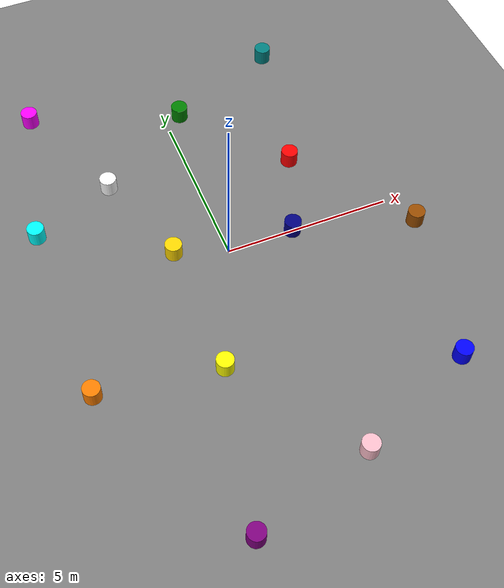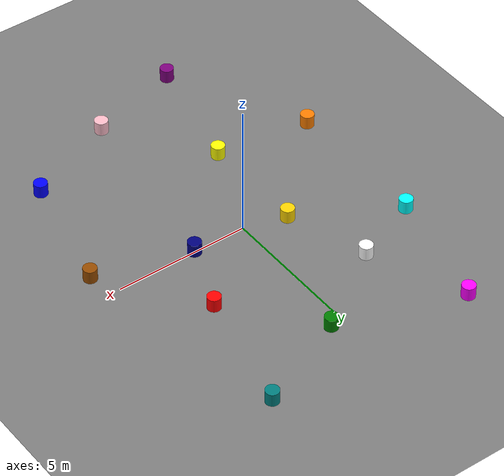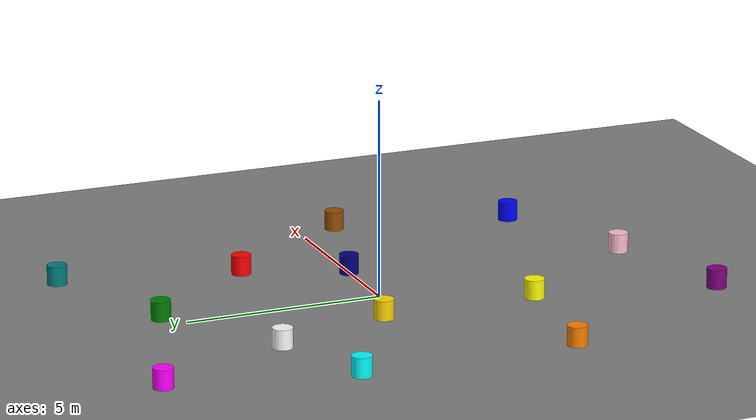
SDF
<sdf version="1.9">
 <world name="empty">
  <physics name="1ms" type="ignored">
   <max_step_size>0.001</max_step_size>
   <real_time_factor>1</real_time_factor>
   <real_time_update_rate>1000</real_time_update_rate>
  </physics>
  <plugin name="gz::sim::systems::Physics" filename="ignition-gazebo-physics-system"/>
  <plugin name="gz::sim::systems::UserCommands" filename="ignition-gazebo-user-commands-system"/>
  <plugin name="gz::sim::systems::SceneBroadcaster" filename="ignition-gazebo-scene-broadcaster-system"/>
  <plugin name="gz::sim::systems::Contact" filename="ignition-gazebo-contact-system"/>
  <plugin filename="ignition-gazebo-imu-system" name="ignition::gazebo::systems::Imu"/>
  <plugin filename="ignition-gazebo-sensors-system" name="ignition::gazebo::systems::Sensors">
   <render_engine>ogre2</render_engine>
  </plugin>
  <gravity>0 0 -9.8</gravity>
  <magnetic_field>6e-06 2.3e-05 -4.2e-05</magnetic_field>
  <atmosphere type="adiabatic"/>
  <scene><ambient>0.4 0.4 0.4 1</ambient><background>0.7 0.7 0.7 1</background><shadows>true</shadows></scene>
  <model name="ground_plane">
   <static>true</static>
   <link name="link">
    <collision name="collision">
     <geometry><plane><normal>0 0 1</normal><size>100 100</size></plane></geometry>
    </collision>
    <visual name="visual">
     <geometry><plane><normal>0 0 1</normal><size>100 100</size></plane></geometry>
     <material>
      <ambient>0.5 0.5 0.5 1.0</ambient>
      <diffuse>0.5 0.5 0.5 1.0</diffuse>
      <specular>0.1 0.1 0.1 1.0</specular>
     </material>
    </visual>
    <inertial>
     <mass>1</mass>
     <inertia><ixx>1</ixx><ixy>0</ixy><ixz>0</ixz><iyy>1</iyy><iyz>0</iyz><izz>1</izz></inertia>
    </inertial>
   </link>
  </model>
  <model name="cylinder">
   <pose>3.0 2.5 0.25 0 -0 0</pose>
   <link name="cylinder_link">
    <inertial>
     <inertia>
      <ixx>0.14580000000000001</ixx>
      <ixy>0</ixy>
      <ixz>0</ixz>
      <iyy>0.14580000000000001</iyy>
      <iyz>0</iyz>
      <izz>0.125</izz>
     </inertia>
     <mass>1000</mass>
    </inertial>
    <collision name="cylinder_collision">
     <geometry><cylinder><radius>0.25</radius><length>0.5</length></cylinder></geometry>
    </collision>
    <visual name="cylinder_visual">
     <geometry><cylinder><radius>0.25</radius><length>0.5</length></cylinder></geometry>
     <material>
      <ambient>1.0 0.0 0.0 1.0</ambient>
      <diffuse>1.0 0.0 0.0 1.0</diffuse>
      <specular>0.1 0.1 0.1 1.0</specular>
     </material>
    </visual>
   </link>
   <static>false</static>
  </model>
  <model name="cylinder_0">
   <pose>4.5 -5.5 0.25 0 -0 0</pose>
   <link name="cylinder_link">
    <inertial>
     <inertia>
      <ixx>0.14580000000000001</ixx>
      <ixy>0</ixy>
      <ixz>0</ixz>
      <iyy>0.14580000000000001</iyy>
      <iyz>0</iyz>
      <izz>0.125</izz>
     </inertia>
     <mass>1000</mass>
    </inertial>
    <collision name="cylinder_collision">
     <geometry><cylinder><radius>0.25</radius><length>0.5</length></cylinder></geometry>
    </collision>
    <visual name="cylinder_visual">
     <geometry><cylinder><radius>0.25</radius><length>0.5</length></cylinder></geometry>
     <material>
      <ambient>0.0 0.0 1.0 1.0</ambient>
      <diffuse>0.0 0.0 1.0 1.0</diffuse>
      <specular>0.1 0.1 0.1 1.0</specular>
     </material>
    </visual>
   </link>
   <static>false</static>
  </model>
  <model name="cylinder_1">
   <pose>-1.5 -3.5 0.25 0 -0 0</pose>
   <link name="cylinder_link">
    <inertial>
     <inertia>
      <ixx>0.14580000000000001</ixx>
      <ixy>0</ixy>
      <ixz>0</ixz>
      <iyy>0.14580000000000001</iyy>
      <iyz>0</iyz>
      <izz>0.125</izz>
     </inertia>
     <mass>1000</mass>
    </inertial>
    <collision name="cylinder_collision">
     <geometry><cylinder><radius>0.25</radius><length>0.5</length></cylinder></geometry>
    </collision>
    <visual name="cylinder_visual">
     <geometry><cylinder><radius>0.25</radius><length>0.5</length></cylinder></geometry>
     <material>
      <ambient>1.0 1.0 0.0 1.0</ambient>
      <diffuse>1.0 1.0 0.0 1.0</diffuse>
      <specular>0.1 0.1 0.1 1.0</specular>
     </material>
    </visual>
   </link>
   <static>false</static>
  </model>
  <model name="cylinder_2">
   <pose>-2.5 3.5 0.25 0 -0 0</pose>
   <link name="cylinder_link">
    <inertial>
     <inertia>
      <ixx>0.14580000000000001</ixx>
      <ixy>0</ixy>
      <ixz>0</ixz>
      <iyy>0.14580000000000001</iyy>
      <iyz>0</iyz>
      <izz>0.125</izz>
     </inertia>
     <mass>1000</mass>
    </inertial>
    <collision name="cylinder_collision">
     <geometry><cylinder><radius>0.25</radius><length>0.5</length></cylinder></geometry>
    </collision>
    <visual name="cylinder_visual">
     <geometry><cylinder><radius>0.25</radius><length>0.5</length></cylinder></geometry>
     <material>
      <ambient>1.0 1.0 1.0 1.0</ambient>
      <diffuse>1.0 1.0 1.0 1.0</diffuse>
      <specular>0.1 0.1 0.1 1.0</specular>
     </material>
    </visual>
   </link>
   <static>false</static>
  </model>
  <model name="cylinder_3">
   <pose>-1.5 0.5 0.25 0 -0 0</pose>
   <link name="cylinder_link">
    <inertial>
     <inertia>
      <ixx>0.14580000000000001</ixx>
      <ixy>0</ixy>
      <ixz>0</ixz>
      <iyy>0.14580000000000001</iyy>
      <iyz>0</iyz>
      <izz>0.125</izz>
     </inertia>
     <mass>1000</mass>
    </inertial>
    <collision name="cylinder_collision">
     <geometry><cylinder><radius>0.25</radius><length>0.5</length></cylinder></geometry>
    </collision>
    <visual name="cylinder_visual">
     <geometry><cylinder><radius>0.25</radius><length>0.5</length></cylinder></geometry>
     <material>
      <ambient>1.0 0.84 0.0 1.0</ambient>
      <diffuse>1.0 0.84 0.0 1.0</diffuse>
      <specular>0.1 0.1 0.1 1.0</specular>
     </material>
    </visual>
   </link>
   <static>false</static>
  </model>
  <model name="cylinder_4">
   <pose>2 0 0.25 0 -0 0</pose>
   <link name="cylinder_link">
    <inertial>
     <inertia>
      <ixx>0.14580000000000001</ixx>
      <ixy>0</ixy>
      <ixz>0</ixz>
      <iyy>0.14580000000000001</iyy>
      <iyz>0</iyz>
      <izz>0.125</izz>
     </inertia>
     <mass>1000</mass>
    </inertial>
    <collision name="cylinder_collision">
     <geometry><cylinder><radius>0.25</radius><length>0.5</length></cylinder></geometry>
    </collision>
    <visual name="cylinder_visual">
     <geometry><cylinder><radius>0.25</radius><length>0.5</length></cylinder></geometry>
     <material>
      <ambient>0.0 0.0 0.5 1.0</ambient>
      <diffuse>0.0 0.0 0.5 1.0</diffuse>
      <specular>0.1 0.1 0.1 1.0</specular>
     </material>
    </visual>
   </link>
   <static>false</static>
  </model>
  <model name="cylinder_5">
   <pose>0.5 5.5 0.25 0 -0 0</pose>
   <link name="cylinder_link">
    <inertial>
     <inertia>
      <ixx>0.14580000000000001</ixx>
      <ixy>0</ixy>
      <ixz>0</ixz>
      <iyy>0.14580000000000001</iyy>
      <iyz>0</iyz>
      <izz>0.125</izz>
     </inertia>
     <mass>1000</mass>
    </inertial>
    <collision name="cylinder_collision">
     <geometry><cylinder><radius>0.25</radius><length>0.5</length></cylinder></geometry>
    </collision>
    <visual name="cylinder_visual">
     <geometry><cylinder><radius>0.25</radius><length>0.5</length></cylinder></geometry>
     <material>
      <ambient>0.0 0.5 0.0 1.0</ambient>
      <diffuse>0.0 0.5 0.0 1.0</diffuse>
      <specular>0.1 0.1 0.1 1.0</specular>
     </material>
    </visual>
   </link>
   <static>false</static>
  </model>
  <model name="cylinder_6">
   <pose>4.0 7.0 0.25 0 -0 0</pose>
   <link name="cylinder_link">
    <inertial>
     <inertia>
      <ixx>0.14580000000000001</ixx>
      <ixy>0</ixy>
      <ixz>0</ixz>
      <iyy>0.14580000000000001</iyy>
      <iyz>0</iyz>
      <izz>0.125</izz>
     </inertia>
     <mass>1000</mass>
    </inertial>
    <collision name="cylinder_collision">
     <geometry><cylinder><radius>0.25</radius><length>0.5</length></cylinder></geometry>
    </collision>
    <visual name="cylinder_visual">
     <geometry><cylinder><radius>0.25</radius><length>0.5</length></cylinder></geometry>
     <material>
      <ambient>0.0 0.5 0.5 1.0</ambient>
      <diffuse>0.0 0.5 0.5 1.0</diffuse>
      <specular>0.1 0.1 0.1 1.0</specular>
     </material>
    </visual>
   </link>
   <static>false</static>
  </model>
  <model name="cylinder_7">
   <pose>-4.0 7.0 0.25 0 -0 0</pose>
   <link name="cylinder_link">
    <inertial>
     <inertia>
      <ixx>0.14580000000000001</ixx>
      <ixy>0</ixy>
      <ixz>0</ixz>
      <iyy>0.14580000000000001</iyy>
      <iyz>0</iyz>
      <izz>0.125</izz>
     </inertia>
     <mass>1000</mass>
    </inertial>
    <collision name="cylinder_collision">
     <geometry><cylinder><radius>0.25</radius><length>0.5</length></cylinder></geometry>
    </collision>
    <visual name="cylinder_visual">
     <geometry><cylinder><radius>0.25</radius><length>0.5</length></cylinder></geometry>
     <material>
      <ambient>1.0 0.0 1.0 1.0</ambient>
      <diffuse>1.0 0.0 1.0 1.0</diffuse>
      <specular>0.1 0.1 0.1 1.0</specular>
     </material>
    </visual>
   </link>
   <static>false</static>
  </model>
  <model name="cylinder_8">
   <pose>-5.0 2.5 0.25 0 -0 0</pose>
   <link name="cylinder_link">
    <inertial>
     <inertia>
      <ixx>0.14580000000000001</ixx>
      <ixy>0</ixy>
      <ixz>0</ixz>
      <iyy>0.14580000000000001</iyy>
      <iyz>0</iyz>
      <izz>0.125</izz>
     </inertia>
     <mass>1000</mass>
    </inertial>
    <collision name="cylinder_collision">
     <geometry><cylinder><radius>0.25</radius><length>0.5</length></cylinder></geometry>
    </collision>
    <visual name="cylinder_visual">
     <geometry><cylinder><radius>0.25</radius><length>0.5</length></cylinder></geometry>
     <material>
      <ambient>0.0 1.0 1.0 1.0</ambient>
      <diffuse>0.0 1.0 1.0 1.0</diffuse>
      <specular>0.1 0.1 0.1 1.0</specular>
     </material>
    </visual>
   </link>
   <static>false</static>
  </model>
  <model name="cylinder_9">
   <pose>5.5 -1.0 0.25 0 -0 0</pose>
   <link name="cylinder_link">
    <inertial>
     <inertia>
      <ixx>0.14580000000000001</ixx>
      <ixy>0</ixy>
      <ixz>0</ixz>
      <iyy>0.14580000000000001</iyy>
      <iyz>0</iyz>
      <izz>0.125</izz>
     </inertia>
     <mass>1000</mass>
    </inertial>
    <collision name="cylinder_collision">
     <geometry><cylinder><radius>0.25</radius><length>0.5</length></cylinder></geometry>
    </collision>
    <visual name="cylinder_visual">
     <geometry><cylinder><radius>0.25</radius><length>0.5</length></cylinder></geometry>
     <material>
      <ambient>0.6 0.3 0.0 1.0</ambient>
      <diffuse>0.6 0.3 0.0 1.0</diffuse>
      <specular>0.1 0.1 0.1 1.0</specular>
     </material>
    </visual>
   </link>
   <static>false</static>
  </model>
  <model name="cylinder_10">
   <pose>1.0 -7.0 0.25 0 -0 0</pose>
   <link name="cylinder_link">
    <inertial>
     <inertia>
      <ixx>0.14580000000000001</ixx>
      <ixy>0</ixy>
      <ixz>0</ixz>
      <iyy>0.14580000000000001</iyy>
      <iyz>0</iyz>
      <izz>0.125</izz>
     </inertia>
     <mass>1000</mass>
    </inertial>
    <collision name="cylinder_collision">
     <geometry><cylinder><radius>0.25</radius><length>0.5</length></cylinder></geometry>
    </collision>
    <visual name="cylinder_visual">
     <geometry><cylinder><radius>0.25</radius><length>0.5</length></cylinder></geometry>
     <material>
      <ambient>1.0 0.75 0.8 1.0</ambient>
      <diffuse>1.0 0.75 0.8 1.0</diffuse>
      <specular>0.1 0.1 0.1 1.0</specular>
     </material>
    </visual>
   </link>
   <static>false</static>
  </model>
  <model name="cylinder_11">
   <pose>-2.5 -8.0 0.25 0 -0 0</pose>
   <link name="cylinder_link">
    <inertial>
     <inertia>
      <ixx>0.14580000000000001</ixx>
      <ixy>0</ixy>
      <ixz>0</ixz>
      <iyy>0.14580000000000001</iyy>
      <iyz>0</iyz>
      <izz>0.125</izz>
     </inertia>
     <mass>1000</mass>
    </inertial>
    <collision name="cylinder_collision">
     <geometry><cylinder><radius>0.25</radius><length>0.5</length></cylinder></geometry>
    </collision>
    <visual name="cylinder_visual">
     <geometry><cylinder><radius>0.25</radius><length>0.5</length></cylinder></geometry>
     <material>
      <ambient>0.5 0.0 0.5 1.0</ambient>
      <diffuse>0.5 0.0 0.5 1.0</diffuse>
      <specular>0.1 0.1 0.1 1.0</specular>
     </material>
    </visual>
   </link>
   <static>false</static>
  </model>
  <model name="cylinder_12">
   <pose>-5.0 -3.0 0.25 0 -0 0</pose>
   <link name="cylinder_link">
    <inertial>
     <inertia>
      <ixx>0.14580000000000001</ixx>
      <ixy>0</ixy>
      <ixz>0</ixz>
      <iyy>0.14580000000000001</iyy>
      <iyz>0</iyz>
      <izz>0.125</izz>
     </inertia>
     <mass>1000</mass>
    </inertial>
    <collision name="cylinder_collision">
     <geometry><cylinder><radius>0.25</radius><length>0.5</length></cylinder></geometry>
    </collision>
    <visual name="cylinder_visual">
     <geometry><cylinder><radius>0.25</radius><length>0.5</length></cylinder></geometry>
     <material>
      <ambient>1.0 0.5 0.0 1.0</ambient>
      <diffuse>1.0 0.5 0.0 1.0</diffuse>
      <specular>0.1 0.1 0.1 1.0</specular>
     </material>
    </visual>
   </link>
   <static>false</static>
  </model>
  <light name="sun" type="directional">
   <pose>0 0 10 0 -0 0</pose>
   <intensity>1</intensity>
   <direction>-0.5 0.1 -0.9</direction>
   <diffuse>0.8 0.8 0.8 1</diffuse>
   <specular>0.2 0.2 0.2 1</specular>
   <attenuation>
    <range>1000</range>
    <linear>0.01</linear>
    <constant>0.90000000000000002</constant>
    <quadratic>0.001</quadratic>
   </attenuation>
   <spot><inner_angle>0</inner_angle><outer_angle>0</outer_angle><falloff>0</falloff></spot>
  </light>
 </world>
</sdf>
